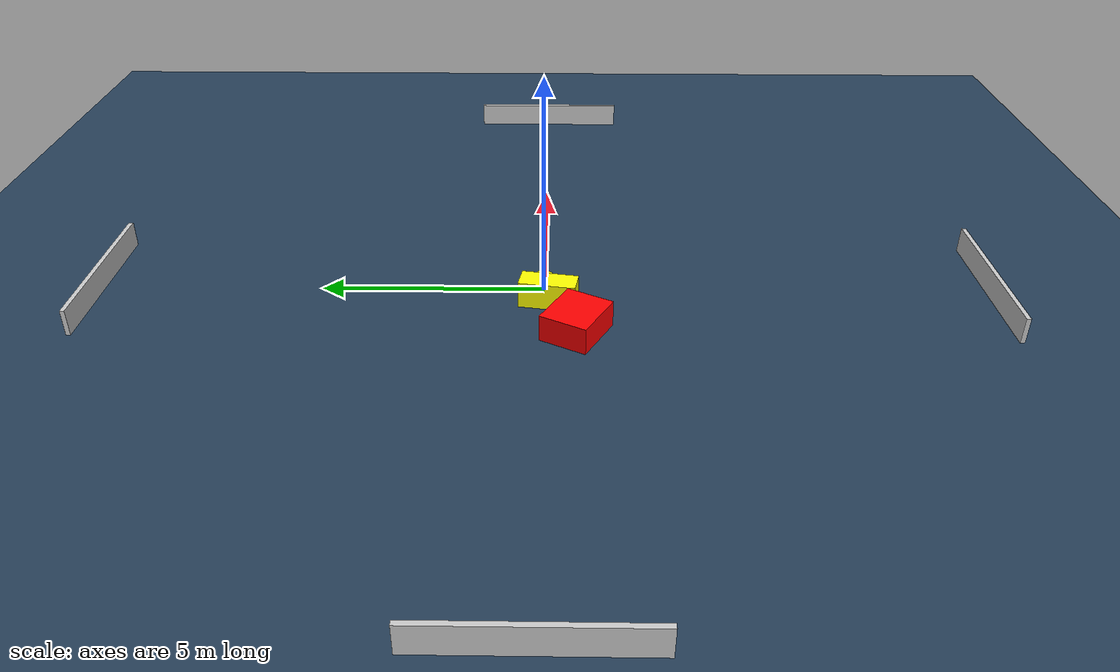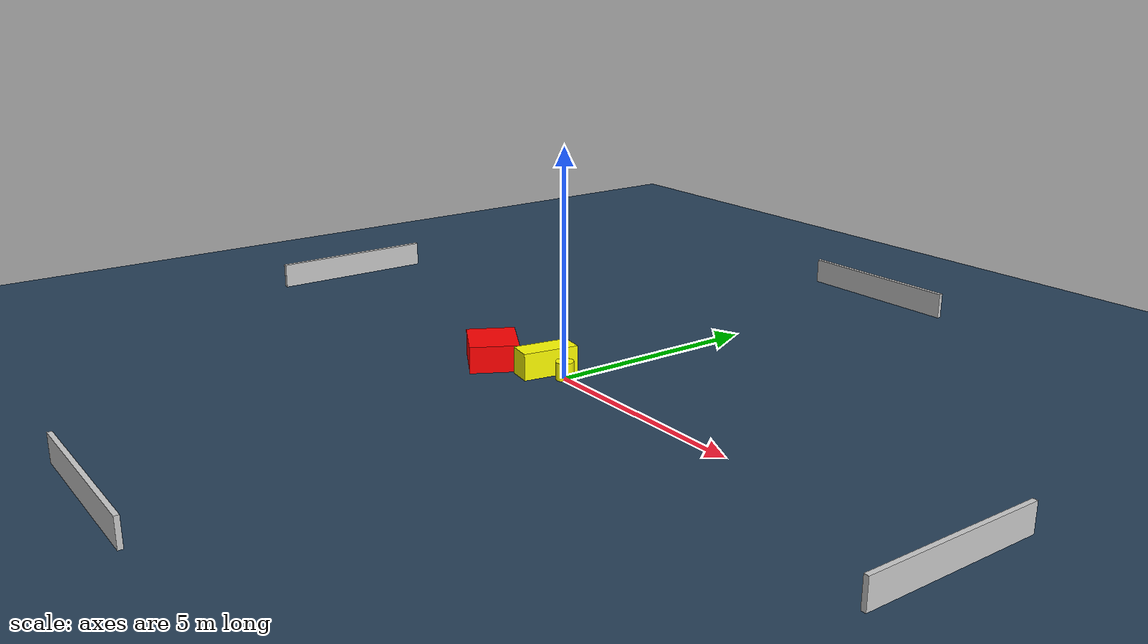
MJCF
<?xml version="1.0" ?>
<mujoco model="generated_environment">
  <option timestep="0.01" integrator="RK4" cone="elliptic"/>
  <default>
    <geom density="1"/>
  </default>
  <asset>
    <texture builtin="gradient" height="3072" name="skybox" rgb1="0.3 0.5 0.7" rgb2="0 0 0" type="skybox" width="512"/>
    <texture builtin="checker" height="300" name="groundplane" rgb1="0.2 0.3 0.4" rgb2="0.1 0.2 0.3" type="2d" width="300"/>
    <material name="groundplane" reflectance="0.2" texrepeat="5 5" texture="groundplane"/>
  </asset>
  <worldbody>
    <light dir="0 0 -1" directional="true" pos="0 0 1.5"/>
    <geom condim="3" friction="0.5 0.005 0.001" material="groundplane" name="floor" pos="0 0 0" size="0 0 0.05" type="plane"/>
    <body name="walls">
      <geom name="wall_1" condim="4" pos="-10.0 0.0 0.3" rgba="0.800000011920929 0.800000011920929 0.800000011920929 1.0" size="0.05 2.0 0.3" type="box"/>
      <geom name="wall_2" condim="4" pos="10.0 0.0 0.3" rgba="0.800000011920929 0.800000011920929 0.800000011920929 1.0" size="0.05 2.0 0.3" type="box"/>
      <geom name="wall_3" condim="4" pos="0.0 -10.0 0.3" rgba="0.800000011920929 0.800000011920929 0.800000011920929 1.0" size="2.0 0.05 0.3" type="box"/>
      <geom name="wall_4" condim="4" pos="0.0 10.0 0.3" rgba="0.800000011920929 0.800000011920929 0.800000011920929 1.0" size="2.0 0.05 0.3" type="box"/>
    </body>
    <body name="robot">
      <joint name="joint_x" type="slide" pos="0 0 0" axis="1 0 0"/>
      <joint name="joint_y" type="slide" pos="0 0 0" axis="0 1 0"/>
      <geom name="robot" type="cylinder" pos="0.0 0.0 0.2" size="0.2 0.2 0.0" mass="5.0" friction="1.0 0.005 0.0001" condim="4" rgba="1.0 1.0 0.0 1.0"/>
    </body>
    <body name="obstacle_1_movable">
      <geom name="obstacle_1_movable" condim="4" pos="-0.5522360168498878 -0.10615504898692113 0.3" euler="0 0 350.6224024034829" friction="0.0 0.005 0.001" rgba="1.0 1.0 0.0 1.0" size="0.2737852497097785 0.6330202532648488 0.3" type="box" mass="0.1"/>
      <joint type="free"/>
    </body>
    <body name="obstacle_2_static">
      <geom name="obstacle_2_static" condim="4" pos="-1.7381736054039385 -0.7107338402805353 0.3" euler="0 0 241.4672859000551" friction="0.0 0.005 0.001" rgba="1.0 0.0 0.0 1.0" size="0.5457271604110694 0.6324390129977709 0.3" type="box"/>
    </body>
  </worldbody>
  <actuator>
    <motor name="actuator_x" joint="joint_x" gear="1" ctrlrange="-1 1"/>
    <motor name="actuator_y" joint="joint_y" gear="1" ctrlrange="-1 1"/>
  </actuator>
</mujoco>
